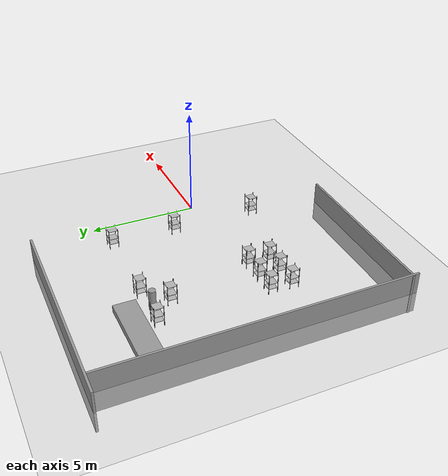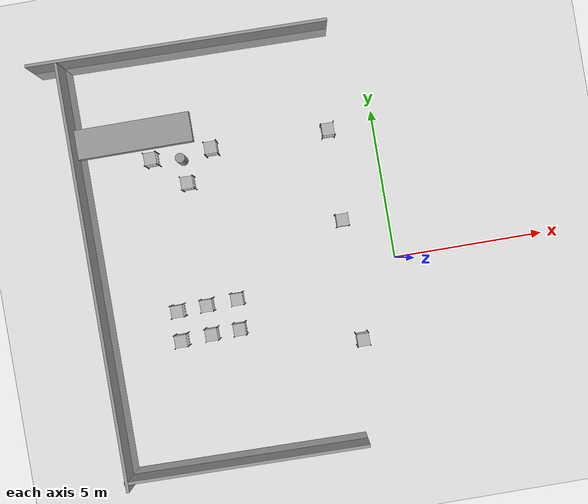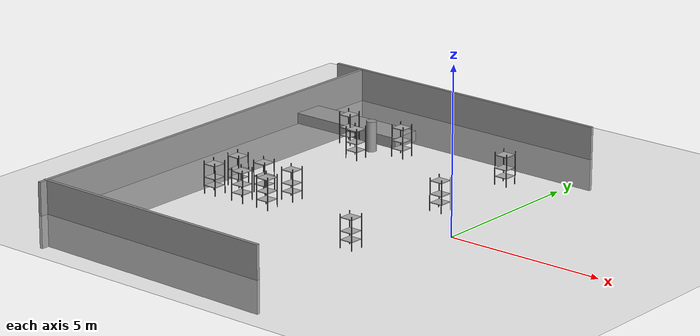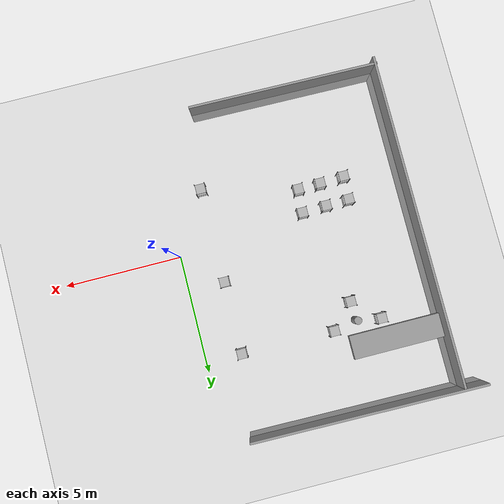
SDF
<sdf version="1.7">
 <world name="default">
  <model name="ground_plane">
   <static>1</static>
   <link name="link">
    <collision name="collision">
     <geometry><plane><normal>0 0 1</normal><size>100 100</size></plane></geometry>
     <surface><friction><ode><mu>100</mu><mu2>50</mu2></ode></friction></surface>
    </collision>
    <visual name="visual">
     <cast_shadows>0</cast_shadows>
     <geometry><plane><normal>0 0 1</normal><size>100 100</size></plane></geometry>
     <material>
      <script><uri>file://media/materials/scripts/gazebo.material</uri><name>Gazebo/Grey</name></script>
     </material>
    </visual>
   </link>
  </model>
  <model name="unit_box">
   <pose>-7.98953 5.4744 0.175148 -1.3e-05 -0 1e-05</pose>
   <link name="link">
    <inertial>
     <mass>1</mass>
     <inertia>
      <ixx>0.166667</ixx>
      <ixy>0</ixy>
      <ixz>0</ixz>
      <iyy>0.166667</iyy>
      <iyz>0</iyz>
      <izz>0.166667</izz>
     </inertia>
    </inertial>
    <collision name="collision"><geometry><box><size>3.88925 1 0.330308</size></box></geometry></collision>
    <visual name="visual">
     <geometry><box><size>3.88925 1 0.330308</size></box></geometry>
     <material>
      <script><name>Gazebo/Grey</name><uri>file://media/materials/scripts/gazebo.material</uri></script>
     </material>
    </visual>
   </link>
  </model>
  <model name="unit_cylinder">
   <pose>-6.5019 4.39945 0.480248 0 -0 0</pose>
   <link name="link">
    <inertial>
     <mass>1</mass>
     <inertia><ixx>0.145833</ixx><ixy>0</ixy><ixz>0</ixz><iyy>0.145833</iyy><iyz>0</iyz><izz>0.125</izz></inertia>
    </inertial>
    <collision name="collision">
     <geometry><cylinder><radius>0.160536</radius><length>0.940504</length></cylinder></geometry>
    </collision>
    <visual name="visual">
     <geometry><cylinder><radius>0.160536</radius><length>0.940504</length></cylinder></geometry>
     <material>
      <script><name>Gazebo/Grey</name><uri>file://media/materials/scripts/gazebo.material</uri></script>
     </material>
    </visual>
   </link>
  </model>
  <model name="wall_1_clone_clone_clone_0_clone_0_clone">
   <link name="wall">
    <visual name="visual">
     <geometry><box><size>9.99999 0.1 2</size></box></geometry>
     <material>
      <ambient>0.6 0.6 0.6 1</ambient>
      <shader type="pixel"/>
      <script><name>ModelPreview_1::wall::visual_MATERIAL_</name><uri>__default__</uri></script>
     </material>
    </visual>
    <collision name="collision">
     <geometry><box><size>9.99999 0.1 2</size></box></geometry>
     <surface>
      <friction>
       <ode><mu>1</mu><mu2>1</mu2><fdir1>0 0 0</fdir1><slip1>0</slip1><slip2>0</slip2></ode>
       <torsional>
        <coefficient>1</coefficient>
        <patch_radius>0</patch_radius>
        <surface_radius>0</surface_radius>
        <use_patch_radius>1</use_patch_radius>
        <ode><slip>0</slip></ode>
       </torsional>
      </friction>
      <bounce><restitution_coefficient>0</restitution_coefficient><threshold>1e+06</threshold></bounce>
      <contact>
       <collide_without_contact>0</collide_without_contact>
       <collide_without_contact_bitmask>1</collide_without_contact_bitmask>
       <collide_bitmask>1</collide_bitmask>
       <ode>
        <soft_cfm>0</soft_cfm>
        <soft_erp>0.2</soft_erp>
        <kp>1e+13</kp>
        <kd>1</kd>
        <max_vel>0.01</max_vel>
        <min_depth>0</min_depth>
       </ode>
       <bullet>
        <split_impulse>1</split_impulse>
        <split_impulse_penetration_threshold>-0.01</split_impulse_penetration_threshold>
        <soft_cfm>0</soft_cfm>
        <soft_erp>0.2</soft_erp>
        <kp>1e+13</kp>
        <kd>1</kd>
       </bullet>
      </contact>
     </surface>
    </collision>
   </link>
   <static>1</static>
   <pose>-5.99831 8.13164 0 0 0 -0.012854</pose>
  </model>
  <model name="wall_1_clone_clone_clone_0_clone_clone">
   <link name="wall">
    <visual name="visual">
     <geometry><box><size>14.2546 0.1 2</size></box></geometry>
     <material>
      <ambient>0.6 0.6 0.6 1</ambient>
      <shader type="pixel"/>
      <script><name>ModelPreview_1::wall::visual_MATERIAL_</name><uri>__default__</uri></script>
     </material>
    </visual>
    <collision name="collision">
     <geometry><box><size>14.2546 0.1 2</size></box></geometry>
     <surface>
      <friction>
       <ode><mu>1</mu><mu2>1</mu2><fdir1>0 0 0</fdir1><slip1>0</slip1><slip2>0</slip2></ode>
       <torsional>
        <coefficient>1</coefficient>
        <patch_radius>0</patch_radius>
        <surface_radius>0</surface_radius>
        <use_patch_radius>1</use_patch_radius>
        <ode><slip>0</slip></ode>
       </torsional>
      </friction>
      <bounce><restitution_coefficient>0</restitution_coefficient><threshold>1e+06</threshold></bounce>
      <contact>
       <collide_without_contact>0</collide_without_contact>
       <collide_without_contact_bitmask>1</collide_without_contact_bitmask>
       <collide_bitmask>1</collide_bitmask>
       <ode>
        <soft_cfm>0</soft_cfm>
        <soft_erp>0.2</soft_erp>
        <kp>1e+13</kp>
        <kd>1</kd>
        <max_vel>0.01</max_vel>
        <min_depth>0</min_depth>
       </ode>
       <bullet>
        <split_impulse>1</split_impulse>
        <split_impulse_penetration_threshold>-0.01</split_impulse_penetration_threshold>
        <soft_cfm>0</soft_cfm>
        <soft_erp>0.2</soft_erp>
        <kp>1e+13</kp>
        <kd>1</kd>
       </bullet>
      </contact>
     </surface>
    </collision>
   </link>
   <static>1</static>
   <pose>-10 1 0 0 0 -1.5708</pose>
  </model>
  <model name="wall_1_clone_clone_clone_0_clone_0_clone_clone">
   <link name="wall">
    <visual name="visual">
     <geometry><box><size>8.15726 0.1 2</size></box></geometry>
     <material>
      <ambient>0.6 0.6 0.6 1</ambient>
      <shader type="pixel"/>
      <script><name>ModelPreview_1::wall::visual_MATERIAL_</name><uri>__default__</uri></script>
     </material>
    </visual>
    <collision name="collision">
     <geometry><box><size>8.15726 0.1 2</size></box></geometry>
     <surface>
      <friction>
       <ode><mu>1</mu><mu2>1</mu2><fdir1>0 0 0</fdir1><slip1>0</slip1><slip2>0</slip2></ode>
       <torsional>
        <coefficient>1</coefficient>
        <patch_radius>0</patch_radius>
        <surface_radius>0</surface_radius>
        <use_patch_radius>1</use_patch_radius>
        <ode><slip>0</slip></ode>
       </torsional>
      </friction>
      <bounce><restitution_coefficient>0</restitution_coefficient><threshold>1e+06</threshold></bounce>
      <contact>
       <collide_without_contact>0</collide_without_contact>
       <collide_without_contact_bitmask>1</collide_without_contact_bitmask>
       <collide_bitmask>1</collide_bitmask>
       <ode>
        <soft_cfm>0</soft_cfm>
        <soft_erp>0.2</soft_erp>
        <kp>1e+13</kp>
        <kd>1</kd>
        <max_vel>0.01</max_vel>
        <min_depth>0</min_depth>
       </ode>
       <bullet>
        <split_impulse>1</split_impulse>
        <split_impulse_penetration_threshold>-0.01</split_impulse_penetration_threshold>
        <soft_cfm>0</soft_cfm>
        <soft_erp>0.2</soft_erp>
        <kp>1e+13</kp>
        <kd>1</kd>
       </bullet>
      </contact>
     </surface>
    </collision>
   </link>
   <static>1</static>
   <pose>-5.99845 -5.87929 0 0 0 -0.012854</pose>
  </model>
  <model name="square_shelf_0">
   <link name="link">
    <visual name="bottom_shelf_visual">
     <geometry><box><size>0.4 0.4 0.02</size></box></geometry>
     <pose>0 0 0.25 0 -0 0</pose>
     <material><ambient>0.6 0.6 0.6 1</ambient><diffuse>0.7 0.7 0.7 1</diffuse></material>
    </visual>
    <collision name="bottom_shelf_collision">
     <geometry><box><size>0.4 0.4 0.02</size></box></geometry>
     <pose>0 0 0.25 0 -0 0</pose>
    </collision>
    <visual name="middle_shelf_visual">
     <geometry><box><size>0.4 0.4 0.02</size></box></geometry>
     <pose>0 0 0.5 0 -0 0</pose>
     <material><ambient>0.6 0.6 0.6 1</ambient><diffuse>0.7 0.7 0.7 1</diffuse></material>
    </visual>
    <collision name="middle_shelf_collision">
     <geometry><box><size>0.4 0.4 0.02</size></box></geometry>
     <pose>0 0 0.5 0 -0 0</pose>
    </collision>
    <visual name="top_shelf_visual">
     <geometry><box><size>0.4 0.4 0.02</size></box></geometry>
     <pose>0 0 0.9 0 -0 0</pose>
     <material><ambient>0.6 0.6 0.6 1</ambient><diffuse>0.7 0.7 0.7 1</diffuse></material>
    </visual>
    <collision name="top_shelf_collision">
     <geometry><box><size>0.4 0.4 0.02</size></box></geometry>
     <pose>0 0 0.9 0 -0 0</pose>
    </collision>
    <visual name="left_support_visual">
     <geometry><box><size>0.02 0.02 1</size></box></geometry>
     <pose>-0.21 -0.21 0.5 0 -0 0</pose>
     <material><ambient>0.3 0.3 0.3 1</ambient><diffuse>0.3 0.3 0.3 1</diffuse></material>
    </visual>
    <collision name="left_support_collision">
     <geometry><box><size>0.02 0.02 1</size></box></geometry>
     <pose>-0.21 -0.21 0.5 0 -0 0</pose>
    </collision>
    <visual name="right_support_visual">
     <geometry><box><size>0.02 0.02 1</size></box></geometry>
     <pose>0.21 -0.21 0.5 0 -0 0</pose>
     <material><ambient>0.3 0.3 0.3 1</ambient><diffuse>0.3 0.3 0.3 1</diffuse></material>
    </visual>
    <collision name="right_support_collision">
     <geometry><box><size>0.02 0.02 1</size></box></geometry>
     <pose>0.21 -0.21 0.5 0 -0 0</pose>
    </collision>
    <visual name="front_left_support_visual">
     <geometry><box><size>0.02 0.02 1</size></box></geometry>
     <pose>-0.21 0.21 0.5 0 -0 0</pose>
     <material><ambient>0.3 0.3 0.3 1</ambient><diffuse>0.3 0.3 0.3 1</diffuse></material>
    </visual>
    <collision name="front_left_support_collision">
     <geometry><box><size>0.02 0.02 1</size></box></geometry>
     <pose>-0.21 0.21 0.5 0 -0 0</pose>
    </collision>
    <visual name="front_right_support_visual">
     <geometry><box><size>0.02 0.02 1</size></box></geometry>
     <pose>0.21 0.21 0.5 0 -0 0</pose>
     <material><ambient>0.3 0.3 0.3 1</ambient><diffuse>0.3 0.3 0.3 1</diffuse></material>
    </visual>
    <collision name="front_right_support_collision">
     <geometry><box><size>0.02 0.02 1</size></box></geometry>
     <pose>0.21 0.21 0.5 0 -0 0</pose>
    </collision>
    <inertial>
     <inertia><ixx>1</ixx><ixy>0</ixy><ixz>0</ixz><iyy>1</iyy><iyz>0</iyz><izz>1</izz></inertia>
     <mass>1</mass>
    </inertial>
   </link>
   <pose>-5.46868 4.57634 0.01 -1e-06 1e-06 0</pose>
  </model>
  <model name="square_shelf_0_clone">
   <link name="link">
    <visual name="bottom_shelf_visual">
     <geometry><box><size>0.4 0.4 0.02</size></box></geometry>
     <pose>0 0 0.25 0 -0 0</pose>
     <material><ambient>0.6 0.6 0.6 1</ambient><diffuse>0.7 0.7 0.7 1</diffuse></material>
    </visual>
    <collision name="bottom_shelf_collision">
     <geometry><box><size>0.4 0.4 0.02</size></box></geometry>
     <pose>0 0 0.25 0 -0 0</pose>
    </collision>
    <visual name="middle_shelf_visual">
     <geometry><box><size>0.4 0.4 0.02</size></box></geometry>
     <pose>0 0 0.5 0 -0 0</pose>
     <material><ambient>0.6 0.6 0.6 1</ambient><diffuse>0.7 0.7 0.7 1</diffuse></material>
    </visual>
    <collision name="middle_shelf_collision">
     <geometry><box><size>0.4 0.4 0.02</size></box></geometry>
     <pose>0 0 0.5 0 -0 0</pose>
    </collision>
    <visual name="top_shelf_visual">
     <geometry><box><size>0.4 0.4 0.02</size></box></geometry>
     <pose>0 0 0.9 0 -0 0</pose>
     <material><ambient>0.6 0.6 0.6 1</ambient><diffuse>0.7 0.7 0.7 1</diffuse></material>
    </visual>
    <collision name="top_shelf_collision">
     <geometry><box><size>0.4 0.4 0.02</size></box></geometry>
     <pose>0 0 0.9 0 -0 0</pose>
    </collision>
    <visual name="left_support_visual">
     <geometry><box><size>0.02 0.02 1</size></box></geometry>
     <pose>-0.21 -0.21 0.5 0 -0 0</pose>
     <material><ambient>0.3 0.3 0.3 1</ambient><diffuse>0.3 0.3 0.3 1</diffuse></material>
    </visual>
    <collision name="left_support_collision">
     <geometry><box><size>0.02 0.02 1</size></box></geometry>
     <pose>-0.21 -0.21 0.5 0 -0 0</pose>
    </collision>
    <visual name="right_support_visual">
     <geometry><box><size>0.02 0.02 1</size></box></geometry>
     <pose>0.21 -0.21 0.5 0 -0 0</pose>
     <material><ambient>0.3 0.3 0.3 1</ambient><diffuse>0.3 0.3 0.3 1</diffuse></material>
    </visual>
    <collision name="right_support_collision">
     <geometry><box><size>0.02 0.02 1</size></box></geometry>
     <pose>0.21 -0.21 0.5 0 -0 0</pose>
    </collision>
    <visual name="front_left_support_visual">
     <geometry><box><size>0.02 0.02 1</size></box></geometry>
     <pose>-0.21 0.21 0.5 0 -0 0</pose>
     <material><ambient>0.3 0.3 0.3 1</ambient><diffuse>0.3 0.3 0.3 1</diffuse></material>
    </visual>
    <collision name="front_left_support_collision">
     <geometry><box><size>0.02 0.02 1</size></box></geometry>
     <pose>-0.21 0.21 0.5 0 -0 0</pose>
    </collision>
    <visual name="front_right_support_visual">
     <geometry><box><size>0.02 0.02 1</size></box></geometry>
     <pose>0.21 0.21 0.5 0 -0 0</pose>
     <material><ambient>0.3 0.3 0.3 1</ambient><diffuse>0.3 0.3 0.3 1</diffuse></material>
    </visual>
    <collision name="front_right_support_collision">
     <geometry><box><size>0.02 0.02 1</size></box></geometry>
     <pose>0.21 0.21 0.5 0 -0 0</pose>
    </collision>
    <inertial>
     <inertia><ixx>1</ixx><ixy>0</ixy><ixz>0</ixz><iyy>1</iyy><iyz>0</iyz><izz>1</izz></inertia>
     <mass>1</mass>
    </inertial>
   </link>
   <pose>-6.42039 3.57096 0.01 0 -1e-06 0</pose>
  </model>
  <model name="square_shelf_0_clone_0">
   <link name="link">
    <visual name="bottom_shelf_visual">
     <geometry><box><size>0.4 0.4 0.02</size></box></geometry>
     <pose>0 0 0.25 0 -0 0</pose>
     <material><ambient>0.6 0.6 0.6 1</ambient><diffuse>0.7 0.7 0.7 1</diffuse></material>
    </visual>
    <collision name="bottom_shelf_collision">
     <geometry><box><size>0.4 0.4 0.02</size></box></geometry>
     <pose>0 0 0.25 0 -0 0</pose>
    </collision>
    <visual name="middle_shelf_visual">
     <geometry><box><size>0.4 0.4 0.02</size></box></geometry>
     <pose>0 0 0.5 0 -0 0</pose>
     <material><ambient>0.6 0.6 0.6 1</ambient><diffuse>0.7 0.7 0.7 1</diffuse></material>
    </visual>
    <collision name="middle_shelf_collision">
     <geometry><box><size>0.4 0.4 0.02</size></box></geometry>
     <pose>0 0 0.5 0 -0 0</pose>
    </collision>
    <visual name="top_shelf_visual">
     <geometry><box><size>0.4 0.4 0.02</size></box></geometry>
     <pose>0 0 0.9 0 -0 0</pose>
     <material><ambient>0.6 0.6 0.6 1</ambient><diffuse>0.7 0.7 0.7 1</diffuse></material>
    </visual>
    <collision name="top_shelf_collision">
     <geometry><box><size>0.4 0.4 0.02</size></box></geometry>
     <pose>0 0 0.9 0 -0 0</pose>
    </collision>
    <visual name="left_support_visual">
     <geometry><box><size>0.02 0.02 1</size></box></geometry>
     <pose>-0.21 -0.21 0.5 0 -0 0</pose>
     <material><ambient>0.3 0.3 0.3 1</ambient><diffuse>0.3 0.3 0.3 1</diffuse></material>
    </visual>
    <collision name="left_support_collision">
     <geometry><box><size>0.02 0.02 1</size></box></geometry>
     <pose>-0.21 -0.21 0.5 0 -0 0</pose>
    </collision>
    <visual name="right_support_visual">
     <geometry><box><size>0.02 0.02 1</size></box></geometry>
     <pose>0.21 -0.21 0.5 0 -0 0</pose>
     <material><ambient>0.3 0.3 0.3 1</ambient><diffuse>0.3 0.3 0.3 1</diffuse></material>
    </visual>
    <collision name="right_support_collision">
     <geometry><box><size>0.02 0.02 1</size></box></geometry>
     <pose>0.21 -0.21 0.5 0 -0 0</pose>
    </collision>
    <visual name="front_left_support_visual">
     <geometry><box><size>0.02 0.02 1</size></box></geometry>
     <pose>-0.21 0.21 0.5 0 -0 0</pose>
     <material><ambient>0.3 0.3 0.3 1</ambient><diffuse>0.3 0.3 0.3 1</diffuse></material>
    </visual>
    <collision name="front_left_support_collision">
     <geometry><box><size>0.02 0.02 1</size></box></geometry>
     <pose>-0.21 0.21 0.5 0 -0 0</pose>
    </collision>
    <visual name="front_right_support_visual">
     <geometry><box><size>0.02 0.02 1</size></box></geometry>
     <pose>0.21 0.21 0.5 0 -0 0</pose>
     <material><ambient>0.3 0.3 0.3 1</ambient><diffuse>0.3 0.3 0.3 1</diffuse></material>
    </visual>
    <collision name="front_right_support_collision">
     <geometry><box><size>0.02 0.02 1</size></box></geometry>
     <pose>0.21 0.21 0.5 0 -0 0</pose>
    </collision>
    <inertial>
     <inertia><ixx>1</ixx><ixy>0</ixy><ixz>0</ixz><iyy>1</iyy><iyz>0</iyz><izz>1</izz></inertia>
     <mass>1</mass>
    </inertial>
   </link>
   <pose>-7.48317 4.54339 0.009999 1e-06 -0 0</pose>
  </model>
  <model name="square_shelf_0_clone_1">
   <link name="link">
    <visual name="bottom_shelf_visual">
     <geometry><box><size>0.4 0.4 0.02</size></box></geometry>
     <pose>0 0 0.25 0 -0 0</pose>
     <material><ambient>0.6 0.6 0.6 1</ambient><diffuse>0.7 0.7 0.7 1</diffuse></material>
    </visual>
    <collision name="bottom_shelf_collision">
     <geometry><box><size>0.4 0.4 0.02</size></box></geometry>
     <pose>0 0 0.25 0 -0 0</pose>
    </collision>
    <visual name="middle_shelf_visual">
     <geometry><box><size>0.4 0.4 0.02</size></box></geometry>
     <pose>0 0 0.5 0 -0 0</pose>
     <material><ambient>0.6 0.6 0.6 1</ambient><diffuse>0.7 0.7 0.7 1</diffuse></material>
    </visual>
    <collision name="middle_shelf_collision">
     <geometry><box><size>0.4 0.4 0.02</size></box></geometry>
     <pose>0 0 0.5 0 -0 0</pose>
    </collision>
    <visual name="top_shelf_visual">
     <geometry><box><size>0.4 0.4 0.02</size></box></geometry>
     <pose>0 0 0.9 0 -0 0</pose>
     <material><ambient>0.6 0.6 0.6 1</ambient><diffuse>0.7 0.7 0.7 1</diffuse></material>
    </visual>
    <collision name="top_shelf_collision">
     <geometry><box><size>0.4 0.4 0.02</size></box></geometry>
     <pose>0 0 0.9 0 -0 0</pose>
    </collision>
    <visual name="left_support_visual">
     <geometry><box><size>0.02 0.02 1</size></box></geometry>
     <pose>-0.21 -0.21 0.5 0 -0 0</pose>
     <material><ambient>0.3 0.3 0.3 1</ambient><diffuse>0.3 0.3 0.3 1</diffuse></material>
    </visual>
    <collision name="left_support_collision">
     <geometry><box><size>0.02 0.02 1</size></box></geometry>
     <pose>-0.21 -0.21 0.5 0 -0 0</pose>
    </collision>
    <visual name="right_support_visual">
     <geometry><box><size>0.02 0.02 1</size></box></geometry>
     <pose>0.21 -0.21 0.5 0 -0 0</pose>
     <material><ambient>0.3 0.3 0.3 1</ambient><diffuse>0.3 0.3 0.3 1</diffuse></material>
    </visual>
    <collision name="right_support_collision">
     <geometry><box><size>0.02 0.02 1</size></box></geometry>
     <pose>0.21 -0.21 0.5 0 -0 0</pose>
    </collision>
    <visual name="front_left_support_visual">
     <geometry><box><size>0.02 0.02 1</size></box></geometry>
     <pose>-0.21 0.21 0.5 0 -0 0</pose>
     <material><ambient>0.3 0.3 0.3 1</ambient><diffuse>0.3 0.3 0.3 1</diffuse></material>
    </visual>
    <collision name="front_left_support_collision">
     <geometry><box><size>0.02 0.02 1</size></box></geometry>
     <pose>-0.21 0.21 0.5 0 -0 0</pose>
    </collision>
    <visual name="front_right_support_visual">
     <geometry><box><size>0.02 0.02 1</size></box></geometry>
     <pose>0.21 0.21 0.5 0 -0 0</pose>
     <material><ambient>0.3 0.3 0.3 1</ambient><diffuse>0.3 0.3 0.3 1</diffuse></material>
    </visual>
    <collision name="front_right_support_collision">
     <geometry><box><size>0.02 0.02 1</size></box></geometry>
     <pose>0.21 0.21 0.5 0 -0 0</pose>
    </collision>
    <inertial>
     <inertia><ixx>1</ixx><ixy>0</ixy><ixz>0</ixz><iyy>1</iyy><iyz>0</iyz><izz>1</izz></inertia>
     <mass>1</mass>
    </inertial>
   </link>
   <pose>-5.43919 -0.483465 0.01 0 -1e-06 0</pose>
  </model>
  <model name="square_shelf_0_clone_2">
   <link name="link">
    <visual name="bottom_shelf_visual">
     <geometry><box><size>0.4 0.4 0.02</size></box></geometry>
     <pose>0 0 0.25 0 -0 0</pose>
     <material><ambient>0.6 0.6 0.6 1</ambient><diffuse>0.7 0.7 0.7 1</diffuse></material>
    </visual>
    <collision name="bottom_shelf_collision">
     <geometry><box><size>0.4 0.4 0.02</size></box></geometry>
     <pose>0 0 0.25 0 -0 0</pose>
    </collision>
    <visual name="middle_shelf_visual">
     <geometry><box><size>0.4 0.4 0.02</size></box></geometry>
     <pose>0 0 0.5 0 -0 0</pose>
     <material><ambient>0.6 0.6 0.6 1</ambient><diffuse>0.7 0.7 0.7 1</diffuse></material>
    </visual>
    <collision name="middle_shelf_collision">
     <geometry><box><size>0.4 0.4 0.02</size></box></geometry>
     <pose>0 0 0.5 0 -0 0</pose>
    </collision>
    <visual name="top_shelf_visual">
     <geometry><box><size>0.4 0.4 0.02</size></box></geometry>
     <pose>0 0 0.9 0 -0 0</pose>
     <material><ambient>0.6 0.6 0.6 1</ambient><diffuse>0.7 0.7 0.7 1</diffuse></material>
    </visual>
    <collision name="top_shelf_collision">
     <geometry><box><size>0.4 0.4 0.02</size></box></geometry>
     <pose>0 0 0.9 0 -0 0</pose>
    </collision>
    <visual name="left_support_visual">
     <geometry><box><size>0.02 0.02 1</size></box></geometry>
     <pose>-0.21 -0.21 0.5 0 -0 0</pose>
     <material><ambient>0.3 0.3 0.3 1</ambient><diffuse>0.3 0.3 0.3 1</diffuse></material>
    </visual>
    <collision name="left_support_collision">
     <geometry><box><size>0.02 0.02 1</size></box></geometry>
     <pose>-0.21 -0.21 0.5 0 -0 0</pose>
    </collision>
    <visual name="right_support_visual">
     <geometry><box><size>0.02 0.02 1</size></box></geometry>
     <pose>0.21 -0.21 0.5 0 -0 0</pose>
     <material><ambient>0.3 0.3 0.3 1</ambient><diffuse>0.3 0.3 0.3 1</diffuse></material>
    </visual>
    <collision name="right_support_collision">
     <geometry><box><size>0.02 0.02 1</size></box></geometry>
     <pose>0.21 -0.21 0.5 0 -0 0</pose>
    </collision>
    <visual name="front_left_support_visual">
     <geometry><box><size>0.02 0.02 1</size></box></geometry>
     <pose>-0.21 0.21 0.5 0 -0 0</pose>
     <material><ambient>0.3 0.3 0.3 1</ambient><diffuse>0.3 0.3 0.3 1</diffuse></material>
    </visual>
    <collision name="front_left_support_collision">
     <geometry><box><size>0.02 0.02 1</size></box></geometry>
     <pose>-0.21 0.21 0.5 0 -0 0</pose>
    </collision>
    <visual name="front_right_support_visual">
     <geometry><box><size>0.02 0.02 1</size></box></geometry>
     <pose>0.21 0.21 0.5 0 -0 0</pose>
     <material><ambient>0.3 0.3 0.3 1</ambient><diffuse>0.3 0.3 0.3 1</diffuse></material>
    </visual>
    <collision name="front_right_support_collision">
     <geometry><box><size>0.02 0.02 1</size></box></geometry>
     <pose>0.21 0.21 0.5 0 -0 0</pose>
    </collision>
    <inertial>
     <inertia><ixx>1</ixx><ixy>0</ixy><ixz>0</ixz><iyy>1</iyy><iyz>0</iyz><izz>1</izz></inertia>
     <mass>1</mass>
    </inertial>
   </link>
   <pose>-6.46501 -0.524736 0.009991 -1e-06 -0 0</pose>
  </model>
  <model name="square_shelf_0_clone_3">
   <link name="link">
    <visual name="bottom_shelf_visual">
     <geometry><box><size>0.4 0.4 0.02</size></box></geometry>
     <pose>0 0 0.25 0 -0 0</pose>
     <material><ambient>0.6 0.6 0.6 1</ambient><diffuse>0.7 0.7 0.7 1</diffuse></material>
    </visual>
    <collision name="bottom_shelf_collision">
     <geometry><box><size>0.4 0.4 0.02</size></box></geometry>
     <pose>0 0 0.25 0 -0 0</pose>
    </collision>
    <visual name="middle_shelf_visual">
     <geometry><box><size>0.4 0.4 0.02</size></box></geometry>
     <pose>0 0 0.5 0 -0 0</pose>
     <material><ambient>0.6 0.6 0.6 1</ambient><diffuse>0.7 0.7 0.7 1</diffuse></material>
    </visual>
    <collision name="middle_shelf_collision">
     <geometry><box><size>0.4 0.4 0.02</size></box></geometry>
     <pose>0 0 0.5 0 -0 0</pose>
    </collision>
    <visual name="top_shelf_visual">
     <geometry><box><size>0.4 0.4 0.02</size></box></geometry>
     <pose>0 0 0.9 0 -0 0</pose>
     <material><ambient>0.6 0.6 0.6 1</ambient><diffuse>0.7 0.7 0.7 1</diffuse></material>
    </visual>
    <collision name="top_shelf_collision">
     <geometry><box><size>0.4 0.4 0.02</size></box></geometry>
     <pose>0 0 0.9 0 -0 0</pose>
    </collision>
    <visual name="left_support_visual">
     <geometry><box><size>0.02 0.02 1</size></box></geometry>
     <pose>-0.21 -0.21 0.5 0 -0 0</pose>
     <material><ambient>0.3 0.3 0.3 1</ambient><diffuse>0.3 0.3 0.3 1</diffuse></material>
    </visual>
    <collision name="left_support_collision">
     <geometry><box><size>0.02 0.02 1</size></box></geometry>
     <pose>-0.21 -0.21 0.5 0 -0 0</pose>
    </collision>
    <visual name="right_support_visual">
     <geometry><box><size>0.02 0.02 1</size></box></geometry>
     <pose>0.21 -0.21 0.5 0 -0 0</pose>
     <material><ambient>0.3 0.3 0.3 1</ambient><diffuse>0.3 0.3 0.3 1</diffuse></material>
    </visual>
    <collision name="right_support_collision">
     <geometry><box><size>0.02 0.02 1</size></box></geometry>
     <pose>0.21 -0.21 0.5 0 -0 0</pose>
    </collision>
    <visual name="front_left_support_visual">
     <geometry><box><size>0.02 0.02 1</size></box></geometry>
     <pose>-0.21 0.21 0.5 0 -0 0</pose>
     <material><ambient>0.3 0.3 0.3 1</ambient><diffuse>0.3 0.3 0.3 1</diffuse></material>
    </visual>
    <collision name="front_left_support_collision">
     <geometry><box><size>0.02 0.02 1</size></box></geometry>
     <pose>-0.21 0.21 0.5 0 -0 0</pose>
    </collision>
    <visual name="front_right_support_visual">
     <geometry><box><size>0.02 0.02 1</size></box></geometry>
     <pose>0.21 0.21 0.5 0 -0 0</pose>
     <material><ambient>0.3 0.3 0.3 1</ambient><diffuse>0.3 0.3 0.3 1</diffuse></material>
    </visual>
    <collision name="front_right_support_collision">
     <geometry><box><size>0.02 0.02 1</size></box></geometry>
     <pose>0.21 0.21 0.5 0 -0 0</pose>
    </collision>
    <inertial>
     <inertia><ixx>1</ixx><ixy>0</ixy><ixz>0</ixz><iyy>1</iyy><iyz>0</iyz><izz>1</izz></inertia>
     <mass>1</mass>
    </inertial>
   </link>
   <pose>-7.44564 -0.553046 0.009999 1e-06 -0 0</pose>
  </model>
  <model name="square_shelf_0_clone_4">
   <link name="link">
    <visual name="bottom_shelf_visual">
     <geometry><box><size>0.4 0.4 0.02</size></box></geometry>
     <pose>0 0 0.25 0 -0 0</pose>
     <material><ambient>0.6 0.6 0.6 1</ambient><diffuse>0.7 0.7 0.7 1</diffuse></material>
    </visual>
    <collision name="bottom_shelf_collision">
     <geometry><box><size>0.4 0.4 0.02</size></box></geometry>
     <pose>0 0 0.25 0 -0 0</pose>
    </collision>
    <visual name="middle_shelf_visual">
     <geometry><box><size>0.4 0.4 0.02</size></box></geometry>
     <pose>0 0 0.5 0 -0 0</pose>
     <material><ambient>0.6 0.6 0.6 1</ambient><diffuse>0.7 0.7 0.7 1</diffuse></material>
    </visual>
    <collision name="middle_shelf_collision">
     <geometry><box><size>0.4 0.4 0.02</size></box></geometry>
     <pose>0 0 0.5 0 -0 0</pose>
    </collision>
    <visual name="top_shelf_visual">
     <geometry><box><size>0.4 0.4 0.02</size></box></geometry>
     <pose>0 0 0.9 0 -0 0</pose>
     <material><ambient>0.6 0.6 0.6 1</ambient><diffuse>0.7 0.7 0.7 1</diffuse></material>
    </visual>
    <collision name="top_shelf_collision">
     <geometry><box><size>0.4 0.4 0.02</size></box></geometry>
     <pose>0 0 0.9 0 -0 0</pose>
    </collision>
    <visual name="left_support_visual">
     <geometry><box><size>0.02 0.02 1</size></box></geometry>
     <pose>-0.21 -0.21 0.5 0 -0 0</pose>
     <material><ambient>0.3 0.3 0.3 1</ambient><diffuse>0.3 0.3 0.3 1</diffuse></material>
    </visual>
    <collision name="left_support_collision">
     <geometry><box><size>0.02 0.02 1</size></box></geometry>
     <pose>-0.21 -0.21 0.5 0 -0 0</pose>
    </collision>
    <visual name="right_support_visual">
     <geometry><box><size>0.02 0.02 1</size></box></geometry>
     <pose>0.21 -0.21 0.5 0 -0 0</pose>
     <material><ambient>0.3 0.3 0.3 1</ambient><diffuse>0.3 0.3 0.3 1</diffuse></material>
    </visual>
    <collision name="right_support_collision">
     <geometry><box><size>0.02 0.02 1</size></box></geometry>
     <pose>0.21 -0.21 0.5 0 -0 0</pose>
    </collision>
    <visual name="front_left_support_visual">
     <geometry><box><size>0.02 0.02 1</size></box></geometry>
     <pose>-0.21 0.21 0.5 0 -0 0</pose>
     <material><ambient>0.3 0.3 0.3 1</ambient><diffuse>0.3 0.3 0.3 1</diffuse></material>
    </visual>
    <collision name="front_left_support_collision">
     <geometry><box><size>0.02 0.02 1</size></box></geometry>
     <pose>-0.21 0.21 0.5 0 -0 0</pose>
    </collision>
    <visual name="front_right_support_visual">
     <geometry><box><size>0.02 0.02 1</size></box></geometry>
     <pose>0.21 0.21 0.5 0 -0 0</pose>
     <material><ambient>0.3 0.3 0.3 1</ambient><diffuse>0.3 0.3 0.3 1</diffuse></material>
    </visual>
    <collision name="front_right_support_collision">
     <geometry><box><size>0.02 0.02 1</size></box></geometry>
     <pose>0.21 0.21 0.5 0 -0 0</pose>
    </collision>
    <inertial>
     <inertia><ixx>1</ixx><ixy>0</ixy><ixz>0</ixz><iyy>1</iyy><iyz>0</iyz><izz>1</izz></inertia>
     <mass>1</mass>
    </inertial>
   </link>
   <pose>-7.48409 -1.5373 0.009999 1e-06 -0 0</pose>
  </model>
  <model name="square_shelf_0_clone_5">
   <link name="link">
    <visual name="bottom_shelf_visual">
     <geometry><box><size>0.4 0.4 0.02</size></box></geometry>
     <pose>0 0 0.25 0 -0 0</pose>
     <material><ambient>0.6 0.6 0.6 1</ambient><diffuse>0.7 0.7 0.7 1</diffuse></material>
    </visual>
    <collision name="bottom_shelf_collision">
     <geometry><box><size>0.4 0.4 0.02</size></box></geometry>
     <pose>0 0 0.25 0 -0 0</pose>
    </collision>
    <visual name="middle_shelf_visual">
     <geometry><box><size>0.4 0.4 0.02</size></box></geometry>
     <pose>0 0 0.5 0 -0 0</pose>
     <material><ambient>0.6 0.6 0.6 1</ambient><diffuse>0.7 0.7 0.7 1</diffuse></material>
    </visual>
    <collision name="middle_shelf_collision">
     <geometry><box><size>0.4 0.4 0.02</size></box></geometry>
     <pose>0 0 0.5 0 -0 0</pose>
    </collision>
    <visual name="top_shelf_visual">
     <geometry><box><size>0.4 0.4 0.02</size></box></geometry>
     <pose>0 0 0.9 0 -0 0</pose>
     <material><ambient>0.6 0.6 0.6 1</ambient><diffuse>0.7 0.7 0.7 1</diffuse></material>
    </visual>
    <collision name="top_shelf_collision">
     <geometry><box><size>0.4 0.4 0.02</size></box></geometry>
     <pose>0 0 0.9 0 -0 0</pose>
    </collision>
    <visual name="left_support_visual">
     <geometry><box><size>0.02 0.02 1</size></box></geometry>
     <pose>-0.21 -0.21 0.5 0 -0 0</pose>
     <material><ambient>0.3 0.3 0.3 1</ambient><diffuse>0.3 0.3 0.3 1</diffuse></material>
    </visual>
    <collision name="left_support_collision">
     <geometry><box><size>0.02 0.02 1</size></box></geometry>
     <pose>-0.21 -0.21 0.5 0 -0 0</pose>
    </collision>
    <visual name="right_support_visual">
     <geometry><box><size>0.02 0.02 1</size></box></geometry>
     <pose>0.21 -0.21 0.5 0 -0 0</pose>
     <material><ambient>0.3 0.3 0.3 1</ambient><diffuse>0.3 0.3 0.3 1</diffuse></material>
    </visual>
    <collision name="right_support_collision">
     <geometry><box><size>0.02 0.02 1</size></box></geometry>
     <pose>0.21 -0.21 0.5 0 -0 0</pose>
    </collision>
    <visual name="front_left_support_visual">
     <geometry><box><size>0.02 0.02 1</size></box></geometry>
     <pose>-0.21 0.21 0.5 0 -0 0</pose>
     <material><ambient>0.3 0.3 0.3 1</ambient><diffuse>0.3 0.3 0.3 1</diffuse></material>
    </visual>
    <collision name="front_left_support_collision">
     <geometry><box><size>0.02 0.02 1</size></box></geometry>
     <pose>-0.21 0.21 0.5 0 -0 0</pose>
    </collision>
    <visual name="front_right_support_visual">
     <geometry><box><size>0.02 0.02 1</size></box></geometry>
     <pose>0.21 0.21 0.5 0 -0 0</pose>
     <material><ambient>0.3 0.3 0.3 1</ambient><diffuse>0.3 0.3 0.3 1</diffuse></material>
    </visual>
    <collision name="front_right_support_collision">
     <geometry><box><size>0.02 0.02 1</size></box></geometry>
     <pose>0.21 0.21 0.5 0 -0 0</pose>
    </collision>
    <inertial>
     <inertia><ixx>1</ixx><ixy>0</ixy><ixz>0</ixz><iyy>1</iyy><iyz>0</iyz><izz>1</izz></inertia>
     <mass>1</mass>
    </inertial>
   </link>
   <pose>-6.45954 -1.49627 0.009999 1e-06 -0 0</pose>
  </model>
  <model name="square_shelf_0_clone_6">
   <link name="link">
    <visual name="bottom_shelf_visual">
     <geometry><box><size>0.4 0.4 0.02</size></box></geometry>
     <pose>0 0 0.25 0 -0 0</pose>
     <material><ambient>0.6 0.6 0.6 1</ambient><diffuse>0.7 0.7 0.7 1</diffuse></material>
    </visual>
    <collision name="bottom_shelf_collision">
     <geometry><box><size>0.4 0.4 0.02</size></box></geometry>
     <pose>0 0 0.25 0 -0 0</pose>
    </collision>
    <visual name="middle_shelf_visual">
     <geometry><box><size>0.4 0.4 0.02</size></box></geometry>
     <pose>0 0 0.5 0 -0 0</pose>
     <material><ambient>0.6 0.6 0.6 1</ambient><diffuse>0.7 0.7 0.7 1</diffuse></material>
    </visual>
    <collision name="middle_shelf_collision">
     <geometry><box><size>0.4 0.4 0.02</size></box></geometry>
     <pose>0 0 0.5 0 -0 0</pose>
    </collision>
    <visual name="top_shelf_visual">
     <geometry><box><size>0.4 0.4 0.02</size></box></geometry>
     <pose>0 0 0.9 0 -0 0</pose>
     <material><ambient>0.6 0.6 0.6 1</ambient><diffuse>0.7 0.7 0.7 1</diffuse></material>
    </visual>
    <collision name="top_shelf_collision">
     <geometry><box><size>0.4 0.4 0.02</size></box></geometry>
     <pose>0 0 0.9 0 -0 0</pose>
    </collision>
    <visual name="left_support_visual">
     <geometry><box><size>0.02 0.02 1</size></box></geometry>
     <pose>-0.21 -0.21 0.5 0 -0 0</pose>
     <material><ambient>0.3 0.3 0.3 1</ambient><diffuse>0.3 0.3 0.3 1</diffuse></material>
    </visual>
    <collision name="left_support_collision">
     <geometry><box><size>0.02 0.02 1</size></box></geometry>
     <pose>-0.21 -0.21 0.5 0 -0 0</pose>
    </collision>
    <visual name="right_support_visual">
     <geometry><box><size>0.02 0.02 1</size></box></geometry>
     <pose>0.21 -0.21 0.5 0 -0 0</pose>
     <material><ambient>0.3 0.3 0.3 1</ambient><diffuse>0.3 0.3 0.3 1</diffuse></material>
    </visual>
    <collision name="right_support_collision">
     <geometry><box><size>0.02 0.02 1</size></box></geometry>
     <pose>0.21 -0.21 0.5 0 -0 0</pose>
    </collision>
    <visual name="front_left_support_visual">
     <geometry><box><size>0.02 0.02 1</size></box></geometry>
     <pose>-0.21 0.21 0.5 0 -0 0</pose>
     <material><ambient>0.3 0.3 0.3 1</ambient><diffuse>0.3 0.3 0.3 1</diffuse></material>
    </visual>
    <collision name="front_left_support_collision">
     <geometry><box><size>0.02 0.02 1</size></box></geometry>
     <pose>-0.21 0.21 0.5 0 -0 0</pose>
    </collision>
    <visual name="front_right_support_visual">
     <geometry><box><size>0.02 0.02 1</size></box></geometry>
     <pose>0.21 0.21 0.5 0 -0 0</pose>
     <material><ambient>0.3 0.3 0.3 1</ambient><diffuse>0.3 0.3 0.3 1</diffuse></material>
    </visual>
    <collision name="front_right_support_collision">
     <geometry><box><size>0.02 0.02 1</size></box></geometry>
     <pose>0.21 0.21 0.5 0 -0 0</pose>
    </collision>
    <inertial>
     <inertia><ixx>1</ixx><ixy>0</ixy><ixz>0</ixz><iyy>1</iyy><iyz>0</iyz><izz>1</izz></inertia>
     <mass>1</mass>
    </inertial>
   </link>
   <pose>-5.52099 -1.47764 0.009999 1e-06 -0 0</pose>
  </model>
  <model name="square_shelf_0_clone_8">
   <link name="link">
    <visual name="bottom_shelf_visual">
     <geometry><box><size>0.4 0.4 0.02</size></box></geometry>
     <pose>0 0 0.25 0 -0 0</pose>
     <material><ambient>0.6 0.6 0.6 1</ambient><diffuse>0.7 0.7 0.7 1</diffuse></material>
    </visual>
    <collision name="bottom_shelf_collision">
     <geometry><box><size>0.4 0.4 0.02</size></box></geometry>
     <pose>0 0 0.25 0 -0 0</pose>
    </collision>
    <visual name="middle_shelf_visual">
     <geometry><box><size>0.4 0.4 0.02</size></box></geometry>
     <pose>0 0 0.5 0 -0 0</pose>
     <material><ambient>0.6 0.6 0.6 1</ambient><diffuse>0.7 0.7 0.7 1</diffuse></material>
    </visual>
    <collision name="middle_shelf_collision">
     <geometry><box><size>0.4 0.4 0.02</size></box></geometry>
     <pose>0 0 0.5 0 -0 0</pose>
    </collision>
    <visual name="top_shelf_visual">
     <geometry><box><size>0.4 0.4 0.02</size></box></geometry>
     <pose>0 0 0.9 0 -0 0</pose>
     <material><ambient>0.6 0.6 0.6 1</ambient><diffuse>0.7 0.7 0.7 1</diffuse></material>
    </visual>
    <collision name="top_shelf_collision">
     <geometry><box><size>0.4 0.4 0.02</size></box></geometry>
     <pose>0 0 0.9 0 -0 0</pose>
    </collision>
    <visual name="left_support_visual">
     <geometry><box><size>0.02 0.02 1</size></box></geometry>
     <pose>-0.21 -0.21 0.5 0 -0 0</pose>
     <material><ambient>0.3 0.3 0.3 1</ambient><diffuse>0.3 0.3 0.3 1</diffuse></material>
    </visual>
    <collision name="left_support_collision">
     <geometry><box><size>0.02 0.02 1</size></box></geometry>
     <pose>-0.21 -0.21 0.5 0 -0 0</pose>
    </collision>
    <visual name="right_support_visual">
     <geometry><box><size>0.02 0.02 1</size></box></geometry>
     <pose>0.21 -0.21 0.5 0 -0 0</pose>
     <material><ambient>0.3 0.3 0.3 1</ambient><diffuse>0.3 0.3 0.3 1</diffuse></material>
    </visual>
    <collision name="right_support_collision">
     <geometry><box><size>0.02 0.02 1</size></box></geometry>
     <pose>0.21 -0.21 0.5 0 -0 0</pose>
    </collision>
    <visual name="front_left_support_visual">
     <geometry><box><size>0.02 0.02 1</size></box></geometry>
     <pose>-0.21 0.21 0.5 0 -0 0</pose>
     <material><ambient>0.3 0.3 0.3 1</ambient><diffuse>0.3 0.3 0.3 1</diffuse></material>
    </visual>
    <collision name="front_left_support_collision">
     <geometry><box><size>0.02 0.02 1</size></box></geometry>
     <pose>-0.21 0.21 0.5 0 -0 0</pose>
    </collision>
    <visual name="front_right_support_visual">
     <geometry><box><size>0.02 0.02 1</size></box></geometry>
     <pose>0.21 0.21 0.5 0 -0 0</pose>
     <material><ambient>0.3 0.3 0.3 1</ambient><diffuse>0.3 0.3 0.3 1</diffuse></material>
    </visual>
    <collision name="front_right_support_collision">
     <geometry><box><size>0.02 0.02 1</size></box></geometry>
     <pose>0.21 0.21 0.5 0 -0 0</pose>
    </collision>
    <inertial>
     <inertia><ixx>1</ixx><ixy>0</ixy><ixz>0</ixz><iyy>1</iyy><iyz>0</iyz><izz>1</izz></inertia>
     <mass>1</mass>
    </inertial>
   </link>
   <pose>-1.56464 4.52839 0.009999 1e-06 -0 0</pose>
  </model>
  <model name="square_shelf_0_clone_9">
   <link name="link">
    <visual name="bottom_shelf_visual">
     <geometry><box><size>0.4 0.4 0.02</size></box></geometry>
     <pose>0 0 0.25 0 -0 0</pose>
     <material><ambient>0.6 0.6 0.6 1</ambient><diffuse>0.7 0.7 0.7 1</diffuse></material>
    </visual>
    <collision name="bottom_shelf_collision">
     <geometry><box><size>0.4 0.4 0.02</size></box></geometry>
     <pose>0 0 0.25 0 -0 0</pose>
    </collision>
    <visual name="middle_shelf_visual">
     <geometry><box><size>0.4 0.4 0.02</size></box></geometry>
     <pose>0 0 0.5 0 -0 0</pose>
     <material><ambient>0.6 0.6 0.6 1</ambient><diffuse>0.7 0.7 0.7 1</diffuse></material>
    </visual>
    <collision name="middle_shelf_collision">
     <geometry><box><size>0.4 0.4 0.02</size></box></geometry>
     <pose>0 0 0.5 0 -0 0</pose>
    </collision>
    <visual name="top_shelf_visual">
     <geometry><box><size>0.4 0.4 0.02</size></box></geometry>
     <pose>0 0 0.9 0 -0 0</pose>
     <material><ambient>0.6 0.6 0.6 1</ambient><diffuse>0.7 0.7 0.7 1</diffuse></material>
    </visual>
    <collision name="top_shelf_collision">
     <geometry><box><size>0.4 0.4 0.02</size></box></geometry>
     <pose>0 0 0.9 0 -0 0</pose>
    </collision>
    <visual name="left_support_visual">
     <geometry><box><size>0.02 0.02 1</size></box></geometry>
     <pose>-0.21 -0.21 0.5 0 -0 0</pose>
     <material><ambient>0.3 0.3 0.3 1</ambient><diffuse>0.3 0.3 0.3 1</diffuse></material>
    </visual>
    <collision name="left_support_collision">
     <geometry><box><size>0.02 0.02 1</size></box></geometry>
     <pose>-0.21 -0.21 0.5 0 -0 0</pose>
    </collision>
    <visual name="right_support_visual">
     <geometry><box><size>0.02 0.02 1</size></box></geometry>
     <pose>0.21 -0.21 0.5 0 -0 0</pose>
     <material><ambient>0.3 0.3 0.3 1</ambient><diffuse>0.3 0.3 0.3 1</diffuse></material>
    </visual>
    <collision name="right_support_collision">
     <geometry><box><size>0.02 0.02 1</size></box></geometry>
     <pose>0.21 -0.21 0.5 0 -0 0</pose>
    </collision>
    <visual name="front_left_support_visual">
     <geometry><box><size>0.02 0.02 1</size></box></geometry>
     <pose>-0.21 0.21 0.5 0 -0 0</pose>
     <material><ambient>0.3 0.3 0.3 1</ambient><diffuse>0.3 0.3 0.3 1</diffuse></material>
    </visual>
    <collision name="front_left_support_collision">
     <geometry><box><size>0.02 0.02 1</size></box></geometry>
     <pose>-0.21 0.21 0.5 0 -0 0</pose>
    </collision>
    <visual name="front_right_support_visual">
     <geometry><box><size>0.02 0.02 1</size></box></geometry>
     <pose>0.21 0.21 0.5 0 -0 0</pose>
     <material><ambient>0.3 0.3 0.3 1</ambient><diffuse>0.3 0.3 0.3 1</diffuse></material>
    </visual>
    <collision name="front_right_support_collision">
     <geometry><box><size>0.02 0.02 1</size></box></geometry>
     <pose>0.21 0.21 0.5 0 -0 0</pose>
    </collision>
    <inertial>
     <inertia><ixx>1</ixx><ixy>0</ixy><ixz>0</ixz><iyy>1</iyy><iyz>0</iyz><izz>1</izz></inertia>
     <mass>1</mass>
    </inertial>
   </link>
   <pose>-1.58648 1.51167 0.01 1e-06 -0 0</pose>
  </model>
  <model name="square_shelf_0_clone_11">
   <link name="link">
    <visual name="bottom_shelf_visual">
     <geometry><box><size>0.4 0.4 0.02</size></box></geometry>
     <pose>0 0 0.25 0 -0 0</pose>
     <material><ambient>0.6 0.6 0.6 1</ambient><diffuse>0.7 0.7 0.7 1</diffuse></material>
    </visual>
    <collision name="bottom_shelf_collision">
     <geometry><box><size>0.4 0.4 0.02</size></box></geometry>
     <pose>0 0 0.25 0 -0 0</pose>
    </collision>
    <visual name="middle_shelf_visual">
     <geometry><box><size>0.4 0.4 0.02</size></box></geometry>
     <pose>0 0 0.5 0 -0 0</pose>
     <material><ambient>0.6 0.6 0.6 1</ambient><diffuse>0.7 0.7 0.7 1</diffuse></material>
    </visual>
    <collision name="middle_shelf_collision">
     <geometry><box><size>0.4 0.4 0.02</size></box></geometry>
     <pose>0 0 0.5 0 -0 0</pose>
    </collision>
    <visual name="top_shelf_visual">
     <geometry><box><size>0.4 0.4 0.02</size></box></geometry>
     <pose>0 0 0.9 0 -0 0</pose>
     <material><ambient>0.6 0.6 0.6 1</ambient><diffuse>0.7 0.7 0.7 1</diffuse></material>
    </visual>
    <collision name="top_shelf_collision">
     <geometry><box><size>0.4 0.4 0.02</size></box></geometry>
     <pose>0 0 0.9 0 -0 0</pose>
    </collision>
    <visual name="left_support_visual">
     <geometry><box><size>0.02 0.02 1</size></box></geometry>
     <pose>-0.21 -0.21 0.5 0 -0 0</pose>
     <material><ambient>0.3 0.3 0.3 1</ambient><diffuse>0.3 0.3 0.3 1</diffuse></material>
    </visual>
    <collision name="left_support_collision">
     <geometry><box><size>0.02 0.02 1</size></box></geometry>
     <pose>-0.21 -0.21 0.5 0 -0 0</pose>
    </collision>
    <visual name="right_support_visual">
     <geometry><box><size>0.02 0.02 1</size></box></geometry>
     <pose>0.21 -0.21 0.5 0 -0 0</pose>
     <material><ambient>0.3 0.3 0.3 1</ambient><diffuse>0.3 0.3 0.3 1</diffuse></material>
    </visual>
    <collision name="right_support_collision">
     <geometry><box><size>0.02 0.02 1</size></box></geometry>
     <pose>0.21 -0.21 0.5 0 -0 0</pose>
    </collision>
    <visual name="front_left_support_visual">
     <geometry><box><size>0.02 0.02 1</size></box></geometry>
     <pose>-0.21 0.21 0.5 0 -0 0</pose>
     <material><ambient>0.3 0.3 0.3 1</ambient><diffuse>0.3 0.3 0.3 1</diffuse></material>
    </visual>
    <collision name="front_left_support_collision">
     <geometry><box><size>0.02 0.02 1</size></box></geometry>
     <pose>-0.21 0.21 0.5 0 -0 0</pose>
    </collision>
    <visual name="front_right_support_visual">
     <geometry><box><size>0.02 0.02 1</size></box></geometry>
     <pose>0.21 0.21 0.5 0 -0 0</pose>
     <material><ambient>0.3 0.3 0.3 1</ambient><diffuse>0.3 0.3 0.3 1</diffuse></material>
    </visual>
    <collision name="front_right_support_collision">
     <geometry><box><size>0.02 0.02 1</size></box></geometry>
     <pose>0.21 0.21 0.5 0 -0 0</pose>
    </collision>
    <inertial>
     <inertia><ixx>1</ixx><ixy>0</ixy><ixz>0</ixz><iyy>1</iyy><iyz>0</iyz><izz>1</izz></inertia>
     <mass>1</mass>
    </inertial>
   </link>
   <pose>-1.56575 -2.48606 0.01 0 -1e-06 0</pose>
  </model>
 </world>
</sdf>
